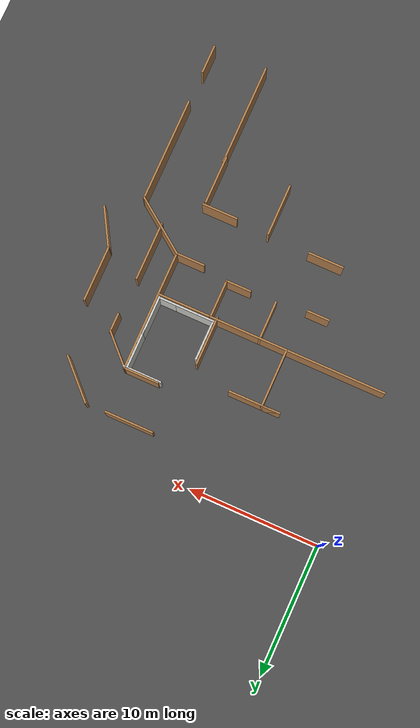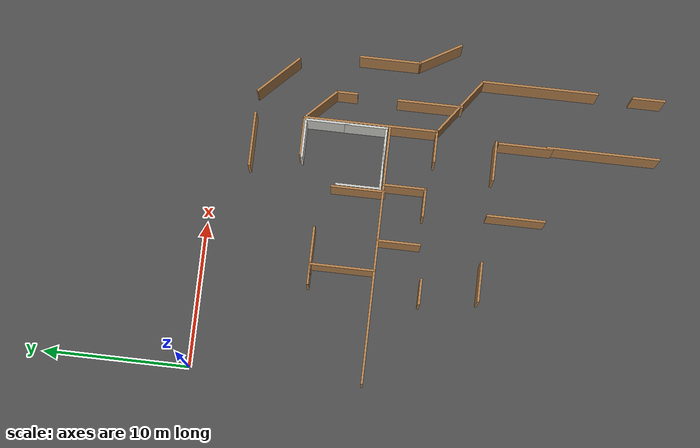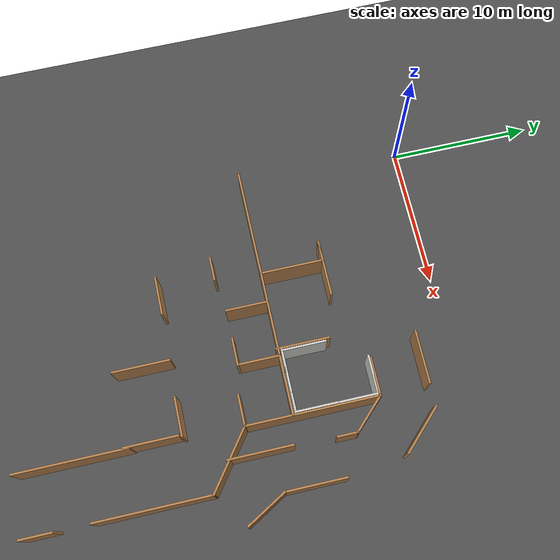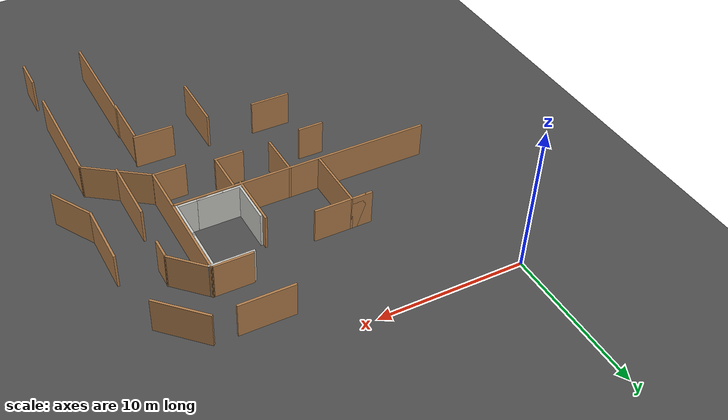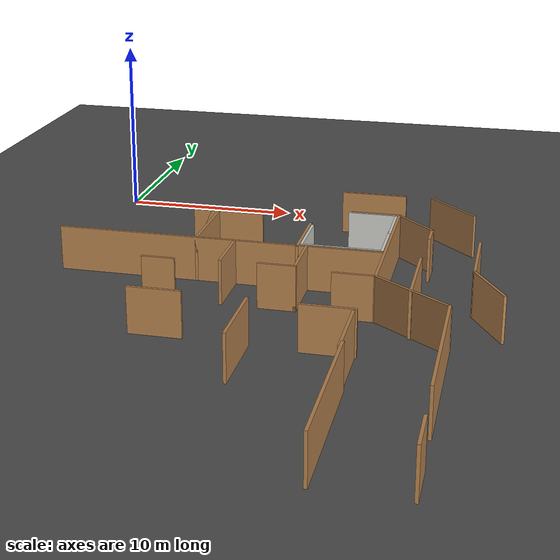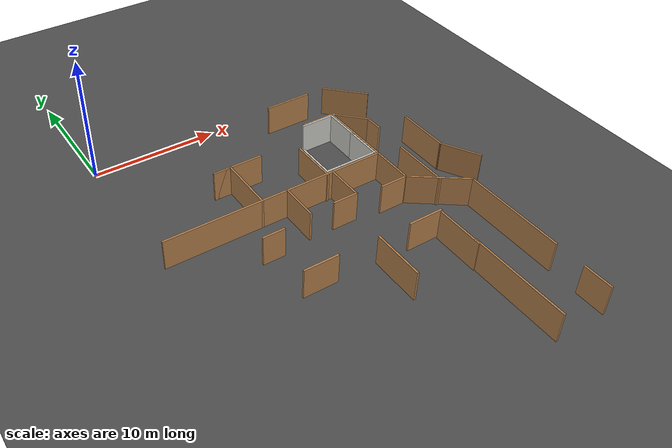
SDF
<sdf version="1.6">
 <world name="default">
  <model name="ground_plane">
   <static>1</static>
   <link name="link">
    <collision name="collision">
     <geometry><plane><normal>0 0 1</normal><size>100 100</size></plane></geometry>
     <surface><friction><ode><mu>100</mu><mu2>50</mu2></ode></friction></surface>
    </collision>
    <visual name="visual">
     <cast_shadows>0</cast_shadows>
     <geometry><plane><normal>0 0 1</normal><size>100 100</size></plane></geometry>
     <material>
      <script><uri>file://media/materials/scripts/gazebo.material</uri><name>Gazebo/Grey</name></script>
     </material>
    </visual>
   </link>
  </model>
  <model name="asphalt_plane">
   <static>1</static>
   <link name="link">
    <collision name="collision"><geometry><box><size>100 100 0.1</size></box></geometry></collision>
    <visual name="visual">
     <cast_shadows>0</cast_shadows>
     <geometry><box><size>100 100 0.1</size></box></geometry>
     <material>
      <script>
       <uri>model://asphalt_plane/materials/scripts</uri>
       <uri>model://asphalt_plane/materials/textures</uri>
       <name>vrc/asphalt</name>
      </script>
     </material>
    </visual>
   </link>
  </model>
  <model name="concrete_wall_6_clone_1">
   <pose>16.3445 -5.99981 0 0 -0 1.57079</pose>
   <link name="Wall_0">
    <collision name="Wall_0_Collision">
     <geometry><box><size>3 0.15 2.5</size></box></geometry>
     <pose>0 0 1.25 0 -0 0</pose>
    </collision>
    <visual name="Wall_0_Visual">
     <pose>0 0 1.25 0 -0 0</pose>
     <geometry><box><size>3 0.15 2.5</size></box></geometry>
     <material>
      <script><uri>file://media/materials/scripts/gazebo.material</uri><name>Gazebo/CeilingTiled</name></script>
      <ambient>1 1 1 1</ambient>
     </material>
     <meta><layer>0</layer></meta>
    </visual>
    <pose>0 0 0 0 -0 1.5708</pose>
   </link>
   <static>1</static>
  </model>
  <model name="concrete_wall_6_clone_2">
   <pose>15.9495 -11.5377 0 0 -0 1.57079</pose>
   <link name="Wall_0">
    <collision name="Wall_0_Collision">
     <geometry><box><size>3 0.15 2.5</size></box></geometry>
     <pose>0 0 1.25 0 -0 0</pose>
    </collision>
    <visual name="Wall_0_Visual">
     <pose>0 0 1.25 0 -0 0</pose>
     <geometry><box><size>3 0.15 2.5</size></box></geometry>
     <material>
      <script><uri>file://media/materials/scripts/gazebo.material</uri><name>Gazebo/CeilingTiled</name></script>
      <ambient>1 1 1 1</ambient>
     </material>
     <meta><layer>0</layer></meta>
    </visual>
    <pose>0 0 0 0 -0 1.5708</pose>
   </link>
   <static>1</static>
  </model>
  <model name="concrete_wall_6_clone_3">
   <pose>14.6748 -11.5357 0 0 -0 1.57079</pose>
   <link name="Wall_0">
    <collision name="Wall_0_Collision">
     <geometry><box><size>3 0.15 2.5</size></box></geometry>
     <pose>0 0 1.25 0 -0 0</pose>
    </collision>
    <visual name="Wall_0_Visual">
     <pose>0 0 1.25 0 -0 0</pose>
     <geometry><box><size>3 0.15 2.5</size></box></geometry>
     <material>
      <script><uri>file://media/materials/scripts/gazebo.material</uri><name>Gazebo/CeilingTiled</name></script>
      <ambient>1 1 1 1</ambient>
     </material>
     <meta><layer>0</layer></meta>
    </visual>
    <pose>0 0 0 0 -0 1.5708</pose>
   </link>
   <static>1</static>
  </model>
  <model name="concrete_wall_7">
   <pose>13.2693 -9.97942 0 0 -0 0</pose>
   <link name="Wall_0">
    <collision name="Wall_0_Collision">
     <geometry><box><size>3 0.15 2.5</size></box></geometry>
     <pose>0 0 1.25 0 -0 0</pose>
    </collision>
    <visual name="Wall_0_Visual">
     <pose>0 0 1.25 0 -0 0</pose>
     <geometry><box><size>3 0.15 2.5</size></box></geometry>
     <material>
      <script><uri>file://media/materials/scripts/gazebo.material</uri><name>Gazebo/CeilingTiled</name></script>
      <ambient>1 1 1 1</ambient>
     </material>
     <meta><layer>0</layer></meta>
    </visual>
    <pose>0 0 0 0 -0 1.5708</pose>
   </link>
   <static>1</static>
  </model>
  <model name="concrete_wall_8">
   <pose>17.5032 -10.1408 0 0 -0 0</pose>
   <link name="Wall_0">
    <collision name="Wall_0_Collision">
     <geometry><box><size>3 0.15 2.5</size></box></geometry>
     <pose>0 0 1.25 0 -0 0</pose>
    </collision>
    <visual name="Wall_0_Visual">
     <pose>0 0 1.25 0 -0 0</pose>
     <geometry><box><size>3 0.15 2.5</size></box></geometry>
     <material>
      <script><uri>file://media/materials/scripts/gazebo.material</uri><name>Gazebo/CeilingTiled</name></script>
      <ambient>1 1 1 1</ambient>
     </material>
     <meta><layer>0</layer></meta>
    </visual>
    <pose>0 0 0 0 -0 1.5708</pose>
   </link>
   <static>1</static>
  </model>
  <model name="concrete_wall_9">
   <pose>17.5144 -7.46989 0 0 -0 0</pose>
   <link name="Wall_0">
    <collision name="Wall_0_Collision">
     <geometry><box><size>3 0.15 2.5</size></box></geometry>
     <pose>0 0 1.25 0 -0 0</pose>
    </collision>
    <visual name="Wall_0_Visual">
     <pose>0 0 1.25 0 -0 0</pose>
     <geometry><box><size>3 0.15 2.5</size></box></geometry>
     <material>
      <script><uri>file://media/materials/scripts/gazebo.material</uri><name>Gazebo/CeilingTiled</name></script>
      <ambient>1 1 1 1</ambient>
     </material>
     <meta><layer>0</layer></meta>
    </visual>
    <pose>0 0 0 0 -0 1.5708</pose>
   </link>
   <static>1</static>
  </model>
  <model name="willowgarage_v1_1">
   <pose>-14.3408 -3.86286 0 0 -0 0</pose>
   <link name="Wall_205">
    <collision name="Wall_205_Collision">
     <geometry><box><size>3.75 0.15 2.5</size></box></geometry>
     <pose>0 0 1.25 0 -0 0</pose>
    </collision>
    <visual name="Wall_205_Visual">
     <pose>0 0 1.25 0 -0 0</pose>
     <geometry><box><size>3.75 0.15 2.5</size></box></geometry>
     <material>
      <script><uri>file://media/materials/scripts/gazebo.material</uri><name>Gazebo/Wood</name></script>
      <ambient>1 1 1 1</ambient>
     </material>
     <meta><layer>0</layer></meta>
    </visual>
    <pose>30.1156 1.36139 0 0 -0 3.14159</pose>
   </link>
   <link name="Wall_24">
    <collision name="Wall_24_Collision">
     <geometry><box><size>9.25 0.15 2.5</size></box></geometry>
     <pose>0 0 1.25 0 -0 0</pose>
    </collision>
    <visual name="Wall_24_Visual">
     <pose>0 0 1.25 0 -0 0</pose>
     <geometry><box><size>9.25 0.15 2.5</size></box></geometry>
     <material>
      <script><uri>file://media/materials/scripts/gazebo.material</uri><name>Gazebo/Wood</name></script>
      <ambient>1 1 1 1</ambient>
     </material>
     <meta><layer>0</layer></meta>
    </visual>
    <pose>32.0092 -6.57054 0 0 0 -1.5708</pose>
   </link>
   <link name="Wall_27">
    <collision name="Wall_27_Collision">
     <geometry><box><size>3.75 0.15 2.5</size></box></geometry>
     <pose>0 0 1.25 0 -0 0</pose>
    </collision>
    <visual name="Wall_27_Visual">
     <pose>0 0 1.25 0 -0 0</pose>
     <geometry><box><size>3.75 0.15 2.5</size></box></geometry>
     <material>
      <script><uri>file://media/materials/scripts/gazebo.material</uri><name>Gazebo/Wood</name></script>
      <ambient>1 1 1 1</ambient>
     </material>
     <meta><layer>0</layer></meta>
    </visual>
    <pose>31.6466 -17.2514 0 0 -0 1.5708</pose>
   </link>
   <link name="Wall_29">
    <collision name="Wall_29_Collision">
     <geometry><box><size>2.75 0.15 2.5</size></box></geometry>
     <pose>0 0 1.25 0 -0 0</pose>
    </collision>
    <visual name="Wall_29_Visual">
     <pose>0 0 1.25 0 -0 0</pose>
     <geometry><box><size>2.75 0.15 2.5</size></box></geometry>
     <material>
      <script><uri>file://media/materials/scripts/gazebo.material</uri><name>Gazebo/Wood</name></script>
      <ambient>1 1 1 1</ambient>
     </material>
     <meta><layer>0</layer></meta>
    </visual>
    <pose>30.4285 -15.2148 0 0 -0 3.14159</pose>
   </link>
   <link name="Wall_31">
    <collision name="Wall_31_Collision">
     <geometry><box><size>4 0.15 2.5</size></box></geometry>
     <pose>0 0 1.25 0 -0 0</pose>
    </collision>
    <visual name="Wall_31_Visual">
     <pose>0 0 1.25 0 -0 0</pose>
     <geometry><box><size>4 0.15 2.5</size></box></geometry>
     <material>
      <script><uri>file://media/materials/scripts/gazebo.material</uri><name>Gazebo/Wood</name></script>
      <ambient>1 1 1 1</ambient>
     </material>
     <meta><layer>0</layer></meta>
    </visual>
    <pose>26.5818 -17.0462 0 0 0 -1.5708</pose>
   </link>
   <link name="Wall_33">
    <collision name="Wall_33_Collision">
     <geometry><box><size>2.75 0.15 2.5</size></box></geometry>
     <pose>0 0 1.25 0 -0 0</pose>
    </collision>
    <visual name="Wall_33_Visual">
     <pose>0 0 1.25 0 -0 0</pose>
     <geometry><box><size>2.75 0.15 2.5</size></box></geometry>
     <material>
      <script><uri>file://media/materials/scripts/gazebo.material</uri><name>Gazebo/Wood</name></script>
      <ambient>1 1 1 1</ambient>
     </material>
     <meta><layer>0</layer></meta>
    </visual>
    <pose>22.0066 -15.0276 0 0 -0 3.14159</pose>
   </link>
   <link name="Wall_345">
    <collision name="Wall_345_Collision">
     <geometry><box><size>7.75 0.15 2.5</size></box></geometry>
     <pose>0 0 1.25 0 -0 0</pose>
    </collision>
    <visual name="Wall_345_Visual">
     <pose>0 0 1.25 0 -0 0</pose>
     <geometry><box><size>7.75 0.15 2.5</size></box></geometry>
     <material>
      <script><uri>file://media/materials/scripts/gazebo.material</uri><name>Gazebo/Wood</name></script>
      <ambient>1 1 1 1</ambient>
     </material>
     <meta><layer>0</layer></meta>
    </visual>
    <pose>31.7218 -22.5131 0 0 0 -1.5708</pose>
   </link>
   <link name="Wall_355">
    <collision name="Wall_355_Collision">
     <geometry><box><size>4.25 0.15 2.5</size></box></geometry>
     <pose>0 0 1.25 0 -0 0</pose>
    </collision>
    <visual name="Wall_355_Visual">
     <pose>0 0 1.25 0 -0 0</pose>
     <geometry><box><size>4.25 0.15 2.5</size></box></geometry>
     <material>
      <script><uri>file://media/materials/scripts/gazebo.material</uri><name>Gazebo/Wood</name></script>
      <ambient>1 1 1 1</ambient>
     </material>
     <meta><layer>0</layer></meta>
    </visual>
    <pose>36.6763 -7.42735 0 0 0 -1.5708</pose>
   </link>
   <link name="Wall_356">
    <collision name="Wall_356_Collision">
     <geometry><box><size>3.25 0.15 2.5</size></box></geometry>
     <pose>0 0 1.25 0 -0 0</pose>
    </collision>
    <visual name="Wall_356_Visual">
     <pose>0 0 1.25 0 -0 0</pose>
     <geometry><box><size>3.25 0.15 2.5</size></box></geometry>
     <material>
      <script><uri>file://media/materials/scripts/gazebo.material</uri><name>Gazebo/Wood</name></script>
      <ambient>1 1 1 1</ambient>
     </material>
     <meta><layer>0</layer></meta>
    </visual>
    <pose>37.4513 -10.8197 0 0 0 -1.0472</pose>
   </link>
   <link name="Wall_381">
    <collision name="Wall_381_Collision">
     <geometry><box><size>3.75 0.15 2.5</size></box></geometry>
     <pose>0 0 1.25 0 -0 0</pose>
    </collision>
    <visual name="Wall_381_Visual">
     <pose>0 0 1.25 0 -0 0</pose>
     <geometry><box><size>3.75 0.15 2.5</size></box></geometry>
     <material>
      <script><uri>file://media/materials/scripts/gazebo.material</uri><name>Gazebo/Wood</name></script>
      <ambient>1 1 1 1</ambient>
     </material>
     <meta><layer>0</layer></meta>
    </visual>
    <pose>34.7884 0.088597 0 0 0 -0.785398</pose>
   </link>
   <link name="Wall_388">
    <collision name="Wall_388_Collision">
     <geometry><box><size>3 0.15 2.5</size></box></geometry>
     <pose>0 0 1.25 0 -0 0</pose>
    </collision>
    <visual name="Wall_388_Visual">
     <pose>0 0 1.25 0 -0 0</pose>
     <geometry><box><size>3 0.15 2.5</size></box></geometry>
     <material>
      <script><uri>file://media/materials/scripts/gazebo.material</uri><name>Gazebo/Wood</name></script>
      <ambient>1 1 1 1</ambient>
     </material>
     <meta><layer>0</layer></meta>
    </visual>
    <pose>33.0169 -3.02816 0 0 0 -0.785398</pose>
   </link>
   <link name="Wall_390">
    <collision name="Wall_390_Collision">
     <geometry><box><size>1.5 0.15 2.5</size></box></geometry>
     <pose>0 0 1.25 0 -0 0</pose>
    </collision>
    <visual name="Wall_390_Visual">
     <pose>0 0 1.25 0 -0 0</pose>
     <geometry><box><size>1.5 0.15 2.5</size></box></geometry>
     <material>
      <script><uri>file://media/materials/scripts/gazebo.material</uri><name>Gazebo/Wood</name></script>
      <ambient>1 1 1 1</ambient>
     </material>
     <meta><layer>0</layer></meta>
    </visual>
    <pose>34.0245 -4.71079 0 0 0 -1.5708</pose>
   </link>
   <link name="Wall_401">
    <collision name="Wall_401_Collision">
     <geometry><box><size>4.89931 0.15 2.5</size></box></geometry>
     <pose>0 0 1.25 0 -0 0</pose>
    </collision>
    <visual name="Wall_401_Visual">
     <pose>0 0 1.25 0 -0 0</pose>
     <geometry><box><size>4.89931 0.15 2.5</size></box></geometry>
     <material>
      <script><uri>file://media/materials/scripts/gazebo.material</uri><name>Gazebo/Wood</name></script>
      <ambient>1 1 1 1</ambient>
     </material>
     <meta><layer>0</layer></meta>
    </visual>
    <pose>33.9285 -12.5188 0 0 -0 2.51197</pose>
   </link>
   <link name="Wall_403">
    <collision name="Wall_403_Collision">
     <geometry><box><size>4.5 0.15 2.5</size></box></geometry>
     <pose>0 0 1.25 0 -0 0</pose>
    </collision>
    <visual name="Wall_403_Visual">
     <pose>0 0 1.25 0 -0 0</pose>
     <geometry><box><size>4.5 0.15 2.5</size></box></geometry>
     <material>
      <script><uri>file://media/materials/scripts/gazebo.material</uri><name>Gazebo/Wood</name></script>
      <ambient>1 1 1 1</ambient>
     </material>
     <meta><layer>0</layer></meta>
    </visual>
    <pose>33.8949 -10.4592 0 0 0 -1.5708</pose>
   </link>
   <link name="Wall_406">
    <collision name="Wall_406_Collision">
     <geometry><box><size>8 0.15 2.5</size></box></geometry>
     <pose>0 0 1.25 0 -0 0</pose>
    </collision>
    <visual name="Wall_406_Visual">
     <pose>0 0 1.25 0 -0 0</pose>
     <geometry><box><size>8 0.15 2.5</size></box></geometry>
     <material>
      <script><uri>file://media/materials/scripts/gazebo.material</uri><name>Gazebo/Wood</name></script>
      <ambient>1 1 1 1</ambient>
     </material>
     <meta><layer>0</layer></meta>
    </visual>
    <pose>35.8478 -17.8421 0 0 0 -1.5708</pose>
   </link>
   <link name="Wall_410">
    <collision name="Wall_410_Collision">
     <geometry><box><size>2.25 0.15 2.5</size></box></geometry>
     <pose>0 0 1.25 0 -0 0</pose>
    </collision>
    <visual name="Wall_410_Visual">
     <pose>0 0 1.25 0 -0 0</pose>
     <geometry><box><size>2.25 0.15 2.5</size></box></geometry>
     <material>
      <script><uri>file://media/materials/scripts/gazebo.material</uri><name>Gazebo/Wood</name></script>
      <ambient>1 1 1 1</ambient>
     </material>
     <meta><layer>0</layer></meta>
    </visual>
    <pose>35.8478 -25.2985 0 0 -0 1.5708</pose>
   </link>
   <link name="Wall_69">
    <collision name="Wall_69_Collision">
     <geometry><box><size>17.75 0.15 2.5</size></box></geometry>
     <pose>0 0 1.25 0 -0 0</pose>
    </collision>
    <visual name="Wall_69_Visual">
     <pose>0 0 1.25 0 -0 0</pose>
     <geometry><box><size>17.75 0.15 2.5</size></box></geometry>
     <material>
      <script><uri>file://media/materials/scripts/gazebo.material</uri><name>Gazebo/Wood</name></script>
      <ambient>1 1 1 1</ambient>
     </material>
     <meta><layer>0</layer></meta>
    </visual>
    <pose>23.186 -7.8915 0 0 -0 3.14159</pose>
   </link>
   <link name="Wall_72">
    <collision name="Wall_72_Collision">
     <geometry><box><size>2.25 0.15 2.5</size></box></geometry>
     <pose>0 0 1.25 0 -0 0</pose>
    </collision>
    <visual name="Wall_72_Visual">
     <pose>0 0 1.25 0 -0 0</pose>
     <geometry><box><size>2.25 0.15 2.5</size></box></geometry>
     <material>
      <script><uri>file://media/materials/scripts/gazebo.material</uri><name>Gazebo/Wood</name></script>
      <ambient>1 1 1 1</ambient>
     </material>
     <meta><layer>0</layer></meta>
    </visual>
    <pose>30.9592 -11.1205 0 0 -0 3.14159</pose>
   </link>
   <link name="Wall_74">
    <collision name="Wall_74_Collision">
     <geometry><box><size>3 0.15 2.5</size></box></geometry>
     <pose>0 0 1.25 0 -0 0</pose>
    </collision>
    <visual name="Wall_74_Visual">
     <pose>0 0 1.25 0 -0 0</pose>
     <geometry><box><size>3 0.15 2.5</size></box></geometry>
     <material>
      <script><uri>file://media/materials/scripts/gazebo.material</uri><name>Gazebo/Wood</name></script>
      <ambient>1 1 1 1</ambient>
     </material>
     <meta><layer>0</layer></meta>
    </visual>
    <pose>27.9198 -9.3165 0 0 0 -1.5708</pose>
   </link>
   <link name="Wall_75">
    <collision name="Wall_75_Collision">
     <geometry><box><size>2 0.15 2.5</size></box></geometry>
     <pose>0 0 1.25 0 -0 0</pose>
    </collision>
    <visual name="Wall_75_Visual">
     <pose>0 0 1.25 0 -0 0</pose>
     <geometry><box><size>2 0.15 2.5</size></box></geometry>
     <material>
      <script><uri>file://media/materials/scripts/gazebo.material</uri><name>Gazebo/Wood</name></script>
      <ambient>1 1 1 1</ambient>
     </material>
     <meta><layer>0</layer></meta>
    </visual>
    <pose>26.9948 -10.7415 0 0 -0 3.14159</pose>
   </link>
   <link name="Wall_77">
    <collision name="Wall_77_Collision">
     <geometry><box><size>3 0.15 2.5</size></box></geometry>
     <pose>0 0 1.25 0 -0 0</pose>
    </collision>
    <visual name="Wall_77_Visual">
     <pose>0 0 1.25 0 -0 0</pose>
     <geometry><box><size>3 0.15 2.5</size></box></geometry>
     <material>
      <script><uri>file://media/materials/scripts/gazebo.material</uri><name>Gazebo/Wood</name></script>
      <ambient>1 1 1 1</ambient>
     </material>
     <meta><layer>0</layer></meta>
    </visual>
    <pose>24.0676 -9.3165 0 0 0 -1.5708</pose>
   </link>
   <link name="Wall_81">
    <collision name="Wall_81_Collision">
     <geometry><box><size>1.75 0.15 2.5</size></box></geometry>
     <pose>0 0 1.25 0 -0 0</pose>
    </collision>
    <visual name="Wall_81_Visual">
     <pose>0 0 1.25 0 -0 0</pose>
     <geometry><box><size>1.75 0.15 2.5</size></box></geometry>
     <material>
      <script><uri>file://media/materials/scripts/gazebo.material</uri><name>Gazebo/Wood</name></script>
      <ambient>1 1 1 1</ambient>
     </material>
     <meta><layer>0</layer></meta>
    </visual>
    <pose>20.9084 -11.0985 0 0 -0 0</pose>
   </link>
   <link name="Wall_88">
    <collision name="Wall_88_Collision">
     <geometry><box><size>4.5 0.15 2.5</size></box></geometry>
     <pose>0 0 1.25 0 -0 0</pose>
    </collision>
    <visual name="Wall_88_Visual">
     <pose>0 0 1.25 0 -0 0</pose>
     <geometry><box><size>4.5 0.15 2.5</size></box></geometry>
     <material>
      <script><uri>file://media/materials/scripts/gazebo.material</uri><name>Gazebo/Wood</name></script>
      <ambient>1 1 1 1</ambient>
     </material>
     <meta><layer>0</layer></meta>
    </visual>
    <pose>21.981 -5.7165 0 0 -0 1.5708</pose>
   </link>
   <link name="Wall_89">
    <collision name="Wall_89_Collision">
     <geometry><box><size>1.5 0.15 2.5</size></box></geometry>
     <pose>0 0 1.25 0 -0 0</pose>
    </collision>
    <visual name="Wall_89_Visual">
     <pose>0 0 1.25 0 -0 0</pose>
     <geometry><box><size>1.5 0.15 2.5</size></box></geometry>
     <material>
      <script><uri>file://media/materials/scripts/gazebo.material</uri><name>Gazebo/Wood</name></script>
      <ambient>1 1 1 1</ambient>
     </material>
     <meta><layer>0</layer></meta>
    </visual>
    <pose>21.306 -3.5415 0 0 -0 3.14159</pose>
   </link>
   <link name="Wall_90">
    <collision name="Wall_90_Collision">
     <geometry><box><size>4 0.15 2.5</size></box></geometry>
     <pose>0 0 1.25 0 -0 0</pose>
    </collision>
    <visual name="Wall_90_Visual">
     <pose>0 0 1.25 0 -0 0</pose>
     <geometry><box><size>4 0.15 2.5</size></box></geometry>
     <material>
      <script><uri>file://media/materials/scripts/gazebo.material</uri><name>Gazebo/Wood</name></script>
      <ambient>1 1 1 1</ambient>
     </material>
     <meta><layer>0</layer></meta>
    </visual>
    <pose>22.556 -3.5415 0 0 -0 0</pose>
   </link>
   <link name="Wall_92">
    <collision name="Wall_92_Collision">
     <geometry><box><size>3.75 0.15 2.5</size></box></geometry>
     <pose>0 0 1.25 0 -0 0</pose>
    </collision>
    <visual name="Wall_92_Visual">
     <pose>0 0 1.25 0 -0 0</pose>
     <geometry><box><size>3.75 0.15 2.5</size></box></geometry>
     <material>
      <script><uri>file://media/materials/scripts/gazebo.material</uri><name>Gazebo/Wood</name></script>
      <ambient>1 1 1 1</ambient>
     </material>
     <meta><layer>0</layer></meta>
    </visual>
    <pose>27.4383 -6.1985 0 0 -0 1.5708</pose>
   </link>
   <link name="Wall_94">
    <collision name="Wall_94_Collision">
     <geometry><box><size>2.75 0.15 2.5</size></box></geometry>
     <pose>0 0 1.25 0 -0 0</pose>
    </collision>
    <visual name="Wall_94_Visual">
     <pose>0 0 1.25 0 -0 0</pose>
     <geometry><box><size>2.75 0.15 2.5</size></box></geometry>
     <material>
      <script><uri>file://media/materials/scripts/gazebo.material</uri><name>Gazebo/Wood</name></script>
      <ambient>1 1 1 1</ambient>
     </material>
     <meta><layer>0</layer></meta>
    </visual>
    <pose>30.7092 -2.02054 0 0 -0 3.14159</pose>
   </link>
   <static>1</static>
  </model>
 </world>
</sdf>
